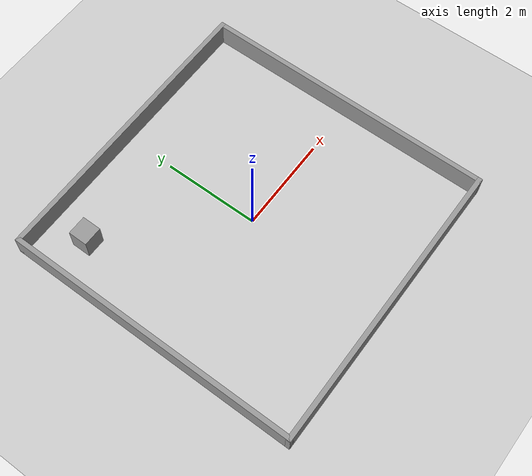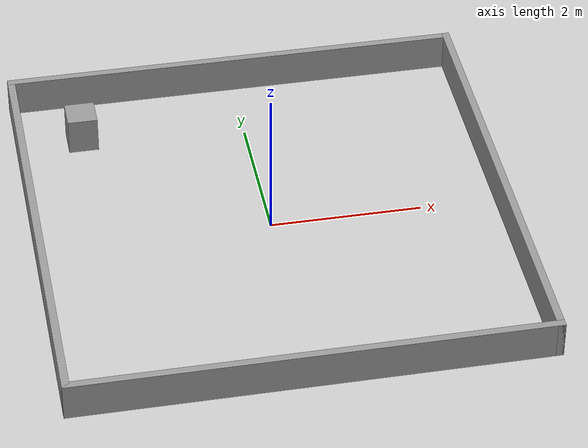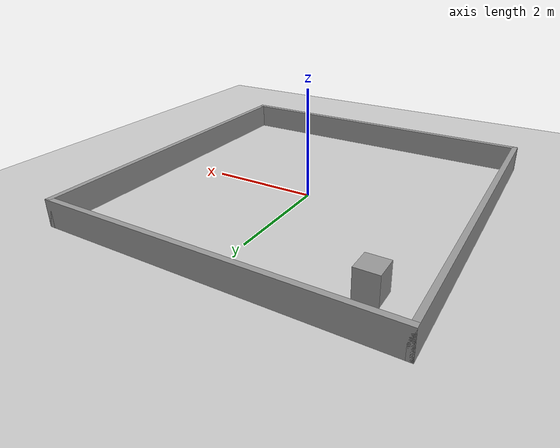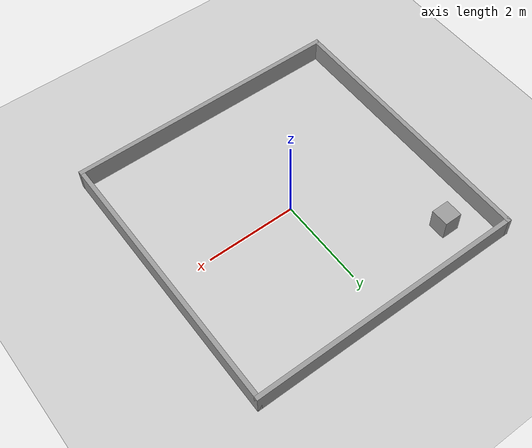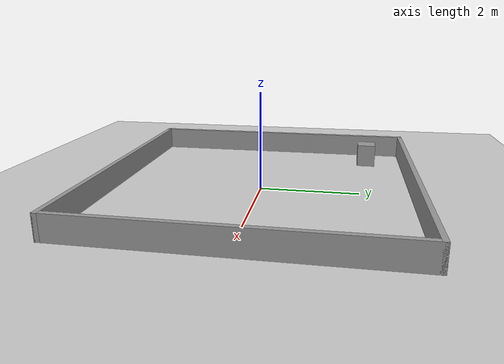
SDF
<?xml version="1.0"?>
<!-- 6m x 6m empty room + one marker box (helps AMCL). Map: maps/empty_room.yaml -->
<sdf version="1.6">
  <world name="default">

    <!-- 바닥과 해를 model:// 로 불러오지 않고 여기에 적는다. model:// 은 GAZEBO_MODEL_PATH 에 없으면 Gazebo 가
         온라인 모델 저장소에서 받으려 하고, 그동안 시작이 수십 초 ~ 몇 분 멈춘다 (simple_line.launch.py 참고) -->
    <model name="ground_plane">
      <static>true</static>
      <link name="link">
        <collision name="collision">
          <geometry><plane><normal>0 0 1</normal><size>100 100</size></plane></geometry>
          <surface><friction><ode><mu>100</mu><mu2>50</mu2></ode></friction></surface>
        </collision>
        <visual name="visual">
          <cast_shadows>false</cast_shadows>
          <geometry><plane><normal>0 0 1</normal><size>100 100</size></plane></geometry>
          <material>
            <script><uri>file://media/materials/scripts/gazebo.material</uri><name>Gazebo/Grey</name></script>
          </material>
        </visual>
      </link>
    </model>

    <light type="directional" name="sun">
      <cast_shadows>true</cast_shadows>
      <pose>0 0 10 0 0 0</pose>
      <diffuse>0.8 0.8 0.8 1</diffuse>
      <specular>0.2 0.2 0.2 1</specular>
      <attenuation><range>1000</range><constant>0.9</constant><linear>0.01</linear><quadratic>0.001</quadratic></attenuation>
      <direction>-0.5 0.1 -0.9</direction>
    </light>

    <scene>
      <shadows>false</shadows>
    </scene>

    <gui fullscreen='0'>
      <camera name='user_camera'>
        <pose frame=''>0 0 12 0 1.570796 0</pose>
        <view_controller>orbit</view_controller>
        <projection_type>perspective</projection_type>
      </camera>
    </gui>

    <physics type="ode">
      <real_time_update_rate>1000.0</real_time_update_rate>
      <max_step_size>0.001</max_step_size>
      <real_time_factor>1</real_time_factor>
    </physics>

    <model name="walls">
      <static>true</static>
      <link name="north">
        <pose>0 3.05 0.25 0 0 0</pose>
        <collision name="collision">
          <geometry><box><size>6.2 0.1 0.5</size></box></geometry>
        </collision>
        <visual name="visual">
          <geometry><box><size>6.2 0.1 0.5</size></box></geometry>
          <material>
            <script>
              <uri>file://media/materials/scripts/gazebo.material</uri>
              <name>Gazebo/Grey</name>
            </script>
          </material>
        </visual>
      </link>
      <link name="south">
        <pose>0 -3.05 0.25 0 0 0</pose>
        <collision name="collision">
          <geometry><box><size>6.2 0.1 0.5</size></box></geometry>
        </collision>
        <visual name="visual">
          <geometry><box><size>6.2 0.1 0.5</size></box></geometry>
          <material>
            <script>
              <uri>file://media/materials/scripts/gazebo.material</uri>
              <name>Gazebo/Grey</name>
            </script>
          </material>
        </visual>
      </link>
      <link name="east">
        <pose>3.05 0 0.25 0 0 0</pose>
        <collision name="collision">
          <geometry><box><size>0.1 6.2 0.5</size></box></geometry>
        </collision>
        <visual name="visual">
          <geometry><box><size>0.1 6.2 0.5</size></box></geometry>
          <material>
            <script>
              <uri>file://media/materials/scripts/gazebo.material</uri>
              <name>Gazebo/Grey</name>
            </script>
          </material>
        </visual>
      </link>
      <link name="west">
        <pose>-3.05 0 0.25 0 0 0</pose>
        <collision name="collision">
          <geometry><box><size>0.1 6.2 0.5</size></box></geometry>
        </collision>
        <visual name="visual">
          <geometry><box><size>0.1 6.2 0.5</size></box></geometry>
          <material>
            <script>
              <uri>file://media/materials/scripts/gazebo.material</uri>
              <name>Gazebo/Grey</name>
            </script>
          </material>
        </visual>
      </link>
    </model>

    <model name="marker_box">
      <static>true</static>
      <link name="link">
        <pose>-2.2 2.2 0.25 0 0 0</pose>
        <collision name="collision">
          <geometry><box><size>0.4 0.4 0.5</size></box></geometry>
        </collision>
        <visual name="visual">
          <geometry><box><size>0.4 0.4 0.5</size></box></geometry>
          <material>
            <script>
              <uri>file://media/materials/scripts/gazebo.material</uri>
              <name>Gazebo/Grey</name>
            </script>
          </material>
        </visual>
      </link>
    </model>

  </world>
</sdf>
